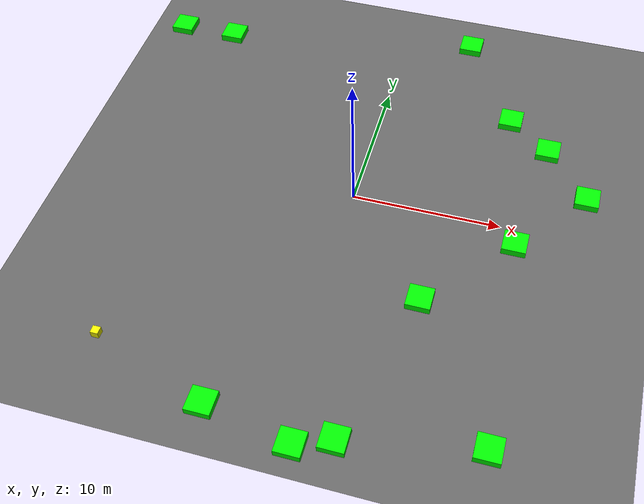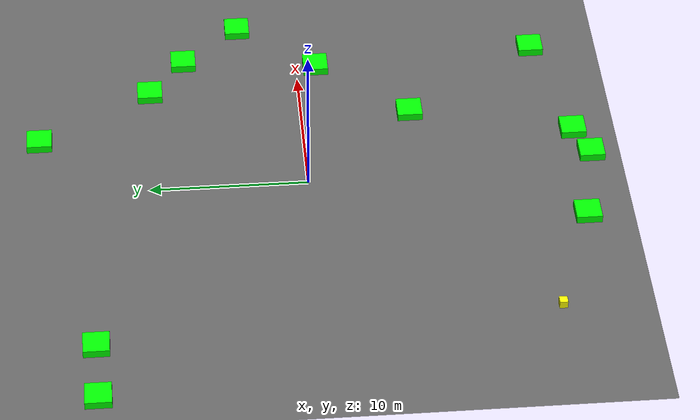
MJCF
<mujoco model="baseline_lvl5_obs12_seed4007">
    <compiler angle="degree" coordinate="local" inertiafromgeom="true"/>
    <option integrator="RK4" timestep="0.01"/>

    <asset>
        <texture builtin="gradient" height="100" rgb1="0.6 0.8 1" rgb2="0 0 0" type="skybox" width="100"/>
        <texture name="floor_texture" type="2d" builtin="checker" width="100" height="100" rgb1="0 0 0" rgb2="0.8 0.8 0.8"/>
        <material name="MatPlane" reflectance="0.5" shininess="1" specular="1" texrepeat="10 10" texture="floor_texture"/>
    </asset>

    <!-- Excluding the contact between the agent and the goal, and the agent and the floor -->
    <contact>
        <exclude body1="agent" body2="goal"/>
        <exclude body1 = "agent" body2 = "floor"/>
    </contact>

    <extension>
        <plugin plugin = "mujoco.pid">
            <instance name = "pid1">
                <config key="kp" value="2"/>
                <config key="ki" value="0"/>
                <config key="kd" value="55"/>
            </instance>
        </plugin>
    </extension>

    <worldbody>
        <light cutoff="100" diffuse="1 1 1" dir="-0 0 -1.3" directional="true" exponent="1" pos="0 0 1.3" specular=".1 .1 .1"/>
        <body name="floor" pos="0 0 0">
            <geom name="floor_geom" type="plane" size="20 20 0.1" material="MatPlane"/>
        </body>

        <!-- Goal -->
        <body name="goal" pos="12.000 -12.000 0">
            <geom name="goal_geom" type="plane" size="0.5 0.5 1" pos="0 0 0" rgba="1 0 0 1"/>
        </body>

        <!-- Agent -->
        <body name="agent" pos="-12.011 -14.399 0.25">
            <joint name="j1" type="slide" axis ="1 0 0 "/>
            <joint name="j2" type="slide" axis ="0 1 0 "/>
            <geom name="agent_geom" type="box" size="0.25 0.25 0.250" rgba="1 1 0 1"/>
        </body>

    <body name="obstacle1" pos="-4.219 -17.079 0.250">
      <geom name="obstacle1_geom" type="box"
            size="0.800 0.800 0.250"
            rgba="0 1 0 1"/>
    </body>
    <body name="obstacle2" pos="15.267 3.685 0.250">
      <geom name="obstacle2_geom" type="box"
            size="0.800 0.800 0.250"
            rgba="0 1 0 1"/>
    </body>
    <body name="obstacle3" pos="4.880 16.855 0.250">
      <geom name="obstacle3_geom" type="box"
            size="0.800 0.800 0.250"
            rgba="0 1 0 1"/>
    </body>
    <body name="obstacle4" pos="11.180 -1.276 0.250">
      <geom name="obstacle4_geom" type="box"
            size="0.800 0.800 0.250"
            rgba="0 1 0 1"/>
    </body>
    <body name="obstacle5" pos="3.691 -17.279 0.250">
      <geom name="obstacle5_geom" type="box"
            size="0.800 0.800 0.250"
            rgba="0 1 0 1"/>
    </body>
    <body name="obstacle6" pos="-17.496 13.469 0.250">
      <geom name="obstacle6_geom" type="box"
            size="0.800 0.800 0.250"
            rgba="0 1 0 1"/>
    </body>
    <body name="obstacle7" pos="6.196 -6.998 0.250">
      <geom name="obstacle7_geom" type="box"
            size="0.800 0.800 0.250"
            rgba="0 1 0 1"/>
    </body>
    <body name="obstacle8" pos="12.068 -15.633 0.250">
      <geom name="obstacle8_geom" type="box"
            size="0.800 0.800 0.250"
            rgba="0 1 0 1"/>
    </body>
    <body name="obstacle9" pos="9.139 9.680 0.250">
      <geom name="obstacle9_geom" type="box"
            size="0.800 0.800 0.250"
            rgba="0 1 0 1"/>
    </body>
    <body name="obstacle10" pos="12.120 7.394 0.250">
      <geom name="obstacle10_geom" type="box"
            size="0.800 0.800 0.250"
            rgba="0 1 0 1"/>
    </body>
    <body name="obstacle11" pos="-13.398 13.521 0.250">
      <geom name="obstacle11_geom" type="box"
            size="0.800 0.800 0.250"
            rgba="0 1 0 1"/>
    </body>
    <body name="obstacle12" pos="1.436 -18.143 0.250">
      <geom name="obstacle12_geom" type="box"
            size="0.800 0.800 0.250"
            rgba="0 1 0 1"/>
    </body>
    </worldbody>

    <actuator>
        <plugin joint="j1" plugin="mujoco.pid" instance="pid1" />
        <plugin joint="j2" plugin="mujoco.pid" instance="pid1"/>
    </actuator>

  <sensor>
    <distance name="dist1" geom1="agent_geom" geom2="obstacle1_geom" cutoff="1.5"/>
    <distance name="dist2" geom1="agent_geom" geom2="obstacle2_geom" cutoff="1.5"/>
    <distance name="dist3" geom1="agent_geom" geom2="obstacle3_geom" cutoff="1.5"/>
    <distance name="dist4" geom1="agent_geom" geom2="obstacle4_geom" cutoff="1.5"/>
    <distance name="dist5" geom1="agent_geom" geom2="obstacle5_geom" cutoff="1.5"/>
    <distance name="dist6" geom1="agent_geom" geom2="obstacle6_geom" cutoff="1.5"/>
    <distance name="dist7" geom1="agent_geom" geom2="obstacle7_geom" cutoff="1.5"/>
    <distance name="dist8" geom1="agent_geom" geom2="obstacle8_geom" cutoff="1.5"/>
    <distance name="dist9" geom1="agent_geom" geom2="obstacle9_geom" cutoff="1.5"/>
    <distance name="dist10" geom1="agent_geom" geom2="obstacle10_geom" cutoff="1.5"/>
    <distance name="dist11" geom1="agent_geom" geom2="obstacle11_geom" cutoff="1.5"/>
    <distance name="dist12" geom1="agent_geom" geom2="obstacle12_geom" cutoff="1.5"/>
  </sensor>
</mujoco>
